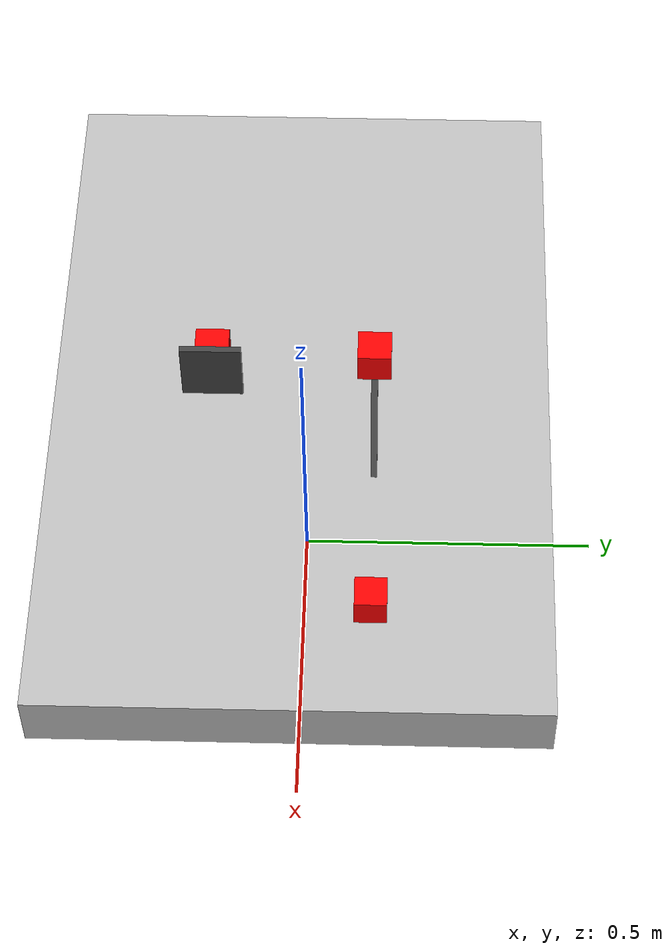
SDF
<?xml version="1.0" ?>
<sdf version="1.9">
  <world name="xh_p0_pick_place">
    <physics name="default_physics" type="bullet">
      <max_step_size>0.001</max_step_size>
      <real_time_factor>1.0</real_time_factor>
    </physics>
    <!-- ADR-0009 keeps calibration on the same explicit Bullet-Featherstone
         backend as production, so its follower-joint constraint is identical. -->
    <plugin name="gz::sim::systems::Physics" filename="gz-sim-physics-system">
      <engine><filename>gz-physics-bullet-featherstone-plugin</filename></engine>
    </plugin>
    <plugin name="gz::sim::systems::UserCommands" filename="gz-sim-user-commands-system"/>
    <plugin name="gz::sim::systems::SceneBroadcaster" filename="gz-sim-scene-broadcaster-system"/>
    <plugin name="gz::sim::systems::Contact" filename="gz-sim-contact-system"/>
    <!-- Required for the calibration RGB-D camera to publish real frames in
         the server-only Harmonic process. -->
    <plugin name="gz::sim::systems::Sensors" filename="gz-sim-sensors-system">
      <render_engine>ogre2</render_engine>
    </plugin>
    <gravity>0 0 -9.81</gravity>
    <light type="directional" name="sun">
      <pose>0 0 10 0 0 0</pose><cast_shadows>true</cast_shadows>
      <diffuse>0.8 0.8 0.8 1</diffuse><specular>0.2 0.2 0.2 1</specular>
      <direction>-0.5 0.1 -0.9</direction>
    </light>

    <!-- This world exists only to prove the S0 contact telemetry chain.  The
         production P0 task world and its cube pose are intentionally unchanged. -->
    <model name="work_table">
      <static>true</static>
      <link name="table_link">
        <pose>0 0 0.4 0 0 0</pose>
        <collision name="collision"><geometry><box><size>1.2 0.8 0.1</size></box></geometry></collision>
        <visual name="visual"><geometry><box><size>1.2 0.8 0.1</size></box></geometry></visual>
      </link>
    </model>

    <!-- A narrow, explicitly modeled support keeps the calibration cube at a
         collision-free, IK-reachable height without any runtime pose write. -->
    <model name="work_table_calibration_fixture">
      <static>true</static>
      <link name="fixture_link">
        <pose>0.17 0.12 0.59 0 0 0</pose>
        <collision name="collision"><geometry><box><size>0.01 0.01 0.28</size></box></geometry></collision>
        <visual name="visual"><geometry><box><size>0.01 0.01 0.28</size></box></geometry><material><diffuse>0.45 0.45 0.45 1</diffuse></material></visual>
      </link>
    </model>

    <model name="object_red_cube">
      <static>true</static>
      <pose>0.17 0.12 0.755 0 0 0</pose>
      <link name="link">
        <!-- S0 validates contact-message semantics, not grasp dynamics.  A
             static calibration target preserves all 13 independent windows. -->
        <collision name="collision"><geometry><box><size>0.05 0.05 0.05</size></box></geometry></collision>
        <visual name="visual"><geometry><box><size>0.05 0.05 0.05</size></box></geometry><material><diffuse>1 0 0 1</diffuse></material></visual>
        <sensor name="red_cube_contact" type="contact">
          <always_on>1</always_on><update_rate>30</update_rate>
          <topic>/xh/supervision/red_cube_contacts</topic>
          <contact><collision>collision</collision></contact>
        </sensor>
      </link>
    </model>

    <model name="work_table_bilateral_backstop">
      <static>true</static>
      <link name="backstop_link">
        <pose>0.2025 -0.12 0.755 0 0 0</pose>
        <collision name="collision"><geometry><box><size>0.01 0.09 0.10</size></box></geometry></collision>
        <visual name="visual"><geometry><box><size>0.01 0.09 0.10</size></box></geometry><material><diffuse>0.25 0.25 0.25 1</diffuse></material></visual>
      </link>
    </model>
    <model name="work_table_bilateral_support">
      <static>true</static>
      <link name="support_link">
        <pose>0.17 -0.12 0.725 0 0 0</pose>
        <collision name="collision"><geometry><box><size>0.025 0.01 0.01</size></box></geometry></collision>
        <visual name="visual"><geometry><box><size>0.025 0.01 0.01</size></box></geometry><material><diffuse>0.15 0.15 0.15 1</diffuse></material></visual>
      </link>
    </model>
    <model name="object_red_cube_bilateral">
      <pose>0.17 -0.12 0.755 0 0 0</pose>
      <link name="link">
        <inertial><mass>0.08</mass></inertial>
        <collision name="collision"><geometry><box><size>0.05 0.05 0.05</size></box></geometry></collision>
        <visual name="visual"><geometry><box><size>0.05 0.05 0.05</size></box></geometry><material><diffuse>1 0 0 1</diffuse></material></visual>
        <sensor name="red_cube_bilateral_contact" type="contact">
          <always_on>1</always_on><update_rate>30</update_rate>
          <topic>/xh/supervision/red_cube_bilateral_contacts</topic>
          <contact><collision>collision</collision></contact>
        </sensor>
      </link>
    </model>

    <model name="object_red_cube_environment">
      <pose>0.42 0.12 0.475 0 0 0</pose>
      <link name="link">
        <inertial><mass>0.08</mass></inertial>
        <collision name="collision"><geometry><box><size>0.05 0.05 0.05</size></box></geometry></collision>
        <visual name="visual"><geometry><box><size>0.05 0.05 0.05</size></box></geometry><material><diffuse>1 0 0 1</diffuse></material></visual>
        <sensor name="red_cube_environment_contact" type="contact">
          <always_on>1</always_on><update_rate>30</update_rate>
          <topic>/xh/supervision/red_cube_environment_contacts</topic>
          <contact><collision>collision</collision></contact>
        </sensor>
      </link>
    </model>

    <!-- Calibration recording uses the same explicit RGB-D transport as P0. -->
    <model name="calibration_camera_fixture">
      <static>true</static>
      <link name="camera_rgbd">
        <pose>0.7 0 0.85 0 0.75 3.14</pose>
        <sensor name="front_rgbd" type="rgbd_camera">
          <always_on>1</always_on><update_rate>15</update_rate><topic>/xh/camera/rgbd</topic>
          <camera><horizontal_fov>1.047</horizontal_fov><image><width>320</width><height>240</height><format>R8G8B8</format></image><clip><near>0.1</near><far>4.0</far></clip></camera>
        </sensor>
      </link>
    </model>
  </world>
</sdf>
